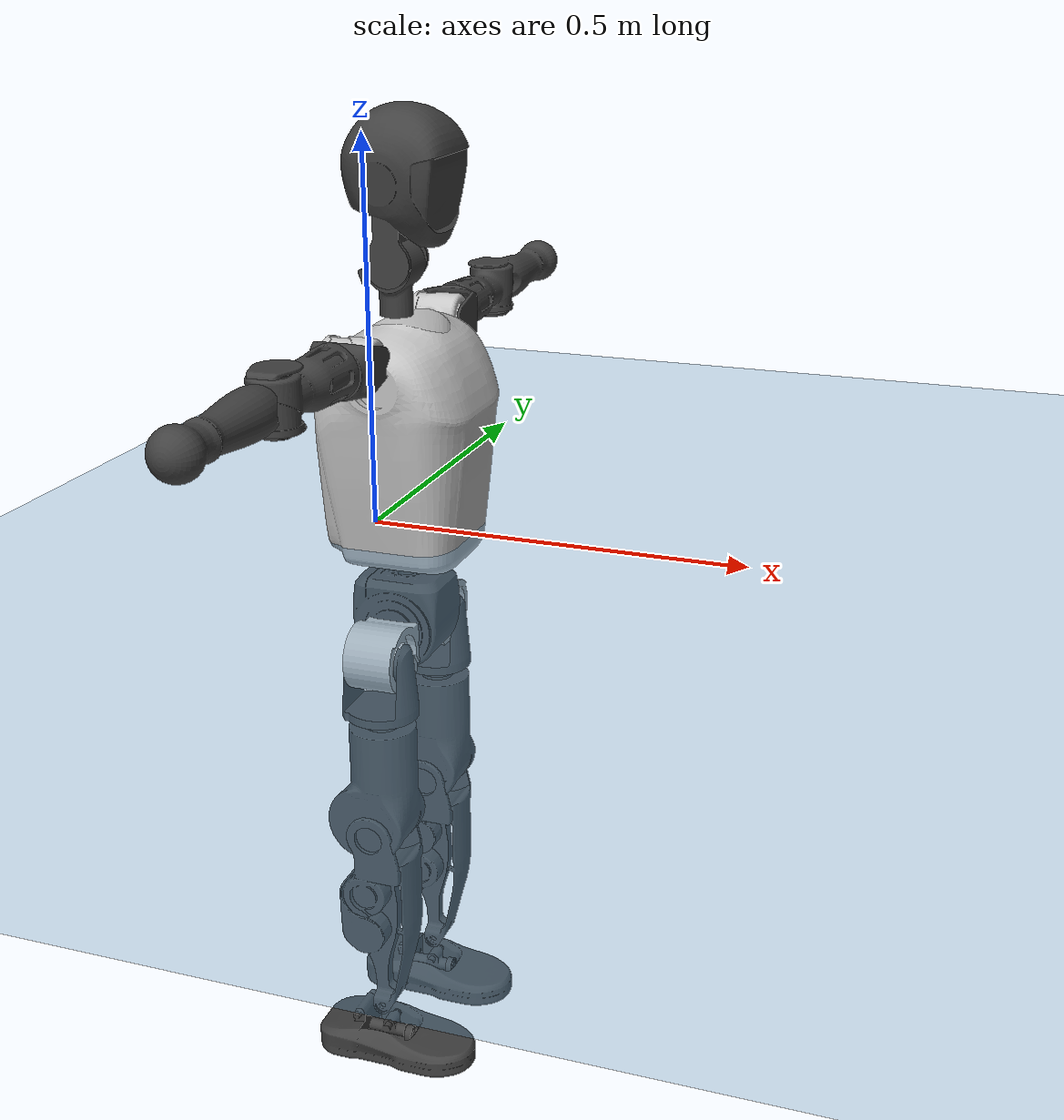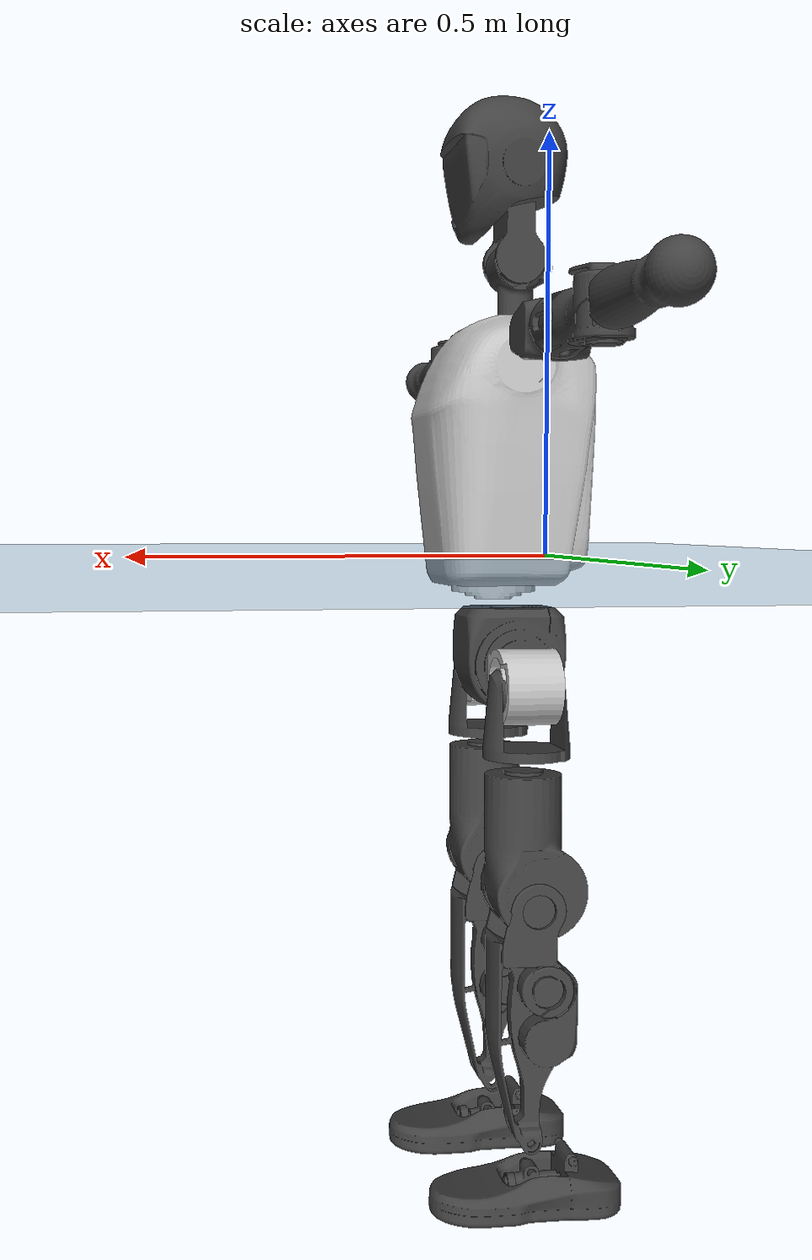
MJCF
<mujoco model="T1">
  <compiler angle="radian" assetdir="assets" balanceinertia="true" inertiafromgeom="false"/>

  <option timestep="0.005" density="1.2" viscosity="2e-05"/>

  <size nkey="1"/>

  <visual>
    <quality shadowsize="8192"/>
    <map shadowclip="0.5"/>
  </visual>

  <default>
    <default class="/">
      <joint armature="0.01" damping="0.01" frictionloss="0.1"/>
      <geom contype="0" conaffinity="0" group="1" solref="-1000 -80"/>
      <site size="0.01 0.005 0.005" group="5"/>
      <general forcelimited="true" biastype="affine" gainprm="25" biasprm="0 -25 -0.6"/>
      <default class="t1">
        <geom rgba="0.25 0.25 0.25 1"/>
        <default class="visual">
          <geom type="mesh" group="2"/>
        </default>
        <default class="collision">
          <geom group="3"/>
        </default>
        <default class="foot">
          <geom size="0.1115 0.05 0.015" type="box" condim="6" group="4" priority="1" solimp="0.015 1 0.015"/>
        </default>
        <default class="reward_collision_sphere">
          <geom group="5" rgba="1 0 0 1"/>
        </default>
      </default>
    </default>
  </default>

  <asset>
    <texture type="skybox" colorspace="auto" name="//unnamed_texture_0" builtin="gradient" rgb1="0.95 0.95 0.95" rgb2="0.95 0.95 0.95" width="100" height="600"/>
    <texture type="2d" colorspace="auto" name="texplane" builtin="checker" rgb1="0.345 0.575 0.748" rgb2="0.345 0.575 0.748" markrgb="1 1 1" width="512" height="512"/>
    <material name="MatPlane" class="/" texture="texplane" texuniform="true" texrepeat="2 2" specular="0.9"/>
    <mesh name="Trunk" class="/" file="Trunk.stl"/>
    <mesh name="H1" class="/" file="H1.stl"/>
    <mesh name="H2" class="/" file="H2.stl"/>
    <mesh name="AL1" class="/" file="AL1.stl"/>
    <mesh name="AL2" class="/" file="AL2.stl"/>
    <mesh name="AL3" class="/" file="AL3.stl"/>
    <mesh name="left_hand_link" class="/" file="left_hand_link.stl"/>
    <mesh name="AR1" class="/" file="AR1.stl"/>
    <mesh name="AR2" class="/" file="AR2.stl"/>
    <mesh name="AR3" class="/" file="AR3.stl"/>
    <mesh name="right_hand_link" class="/" file="right_hand_link.stl"/>
    <mesh name="Waist" class="/" file="Waist.stl"/>
    <mesh name="Hip_Pitch_Left" class="/" file="Hip_Pitch_Left.stl"/>
    <mesh name="Hip_Roll_Left" class="/" file="Hip_Roll_Left.stl"/>
    <mesh name="Hip_Yaw_Left" class="/" file="Hip_Yaw_Left.stl"/>
    <mesh name="Shank_Left" class="/" file="Shank_Left.stl"/>
    <mesh name="Ankle_Cross_Left" class="/" file="Ankle_Cross_Left.stl"/>
    <mesh name="left_foot_link" class="/" file="left_foot_link.stl"/>
    <mesh name="Hip_Pitch_Right" class="/" file="Hip_Pitch_Right.stl"/>
    <mesh name="Hip_Roll_Right" class="/" file="Hip_Roll_Right.stl"/>
    <mesh name="Hip_Yaw_Right" class="/" file="Hip_Yaw_Right.stl"/>
    <mesh name="Shank_Right" class="/" file="Shank_Right.stl"/>
    <mesh name="Ankle_Cross_Right" class="/" file="Ankle_Cross_Right.stl"/>
    <mesh name="right_foot_link" class="/" file="right_foot_link.stl"/>
  </asset>

  <worldbody>
    <geom name="floor" class="/" size="100 100 0.125" type="plane" group="0" material="MatPlane"/>
    <light name="toplight_shadow" class="/" pos="0 0 5" dir="0.0990148 0.0990148 -0.990148" type="directional" ambient="0.04 0.04 0.04" diffuse="0.55 0.55 0.55" specular="0.12 0.12 0.12"/>
    <light name="toplight_fill" class="/" pos="0 0 5" dir="0.0990148 0.0990148 -0.990148" type="directional" castshadow="false" ambient="0.04 0.04 0.04" diffuse="0.3 0.3 0.3" specular="0.08 0.08 0.08"/>
    <body name="trunk" childclass="t1" pos="0.00100583 -0.0028139 0.000748451" quat="1 0.000327974 -6.9918e-05 -8.9048e-05">
      <inertial pos="0.035437 -0.00242227 0.11671" quat="0.999989 0.00100853 -0.00453601 2.84399e-05" mass="8.07986" diaginertia="0.0135434 0.0352611 0.104547"/>
      <joint name="//unnamed_joint_0" type="free" armature="0" damping="0" frictionloss="0"/>
      <geom name="//unnamed_geom_1" class="visual" rgba="0.76 0.76 0.76 1" mesh="Trunk"/>
      <geom name="//unnamed_geom_2" class="collision" size="0.0671436 0.0895248 0.134287" pos="0.041143 0 0.136346" type="box"/>
      <geom name="//unnamed_geom_3" class="reward_collision_sphere" size="0.102953" pos="0.041143 0 0.113622"/>
      <geom name="//unnamed_geom_4" class="reward_collision_sphere" size="0.0134287" pos="0.041143 0.0734234 0"/>
      <geom name="//unnamed_geom_5" class="reward_collision_sphere" size="0.0134287" pos="0.041143 -0.0734234 0"/>
      <geom name="//unnamed_geom_6" class="reward_collision_sphere" size="0.0134287" pos="0.041143 0.0924271 0.20452"/>
      <geom name="//unnamed_geom_7" class="reward_collision_sphere" size="0.0134287" pos="0.041143 -0.0924271 0.20452"/>
      <site name="imu" pos="0.0122496 0.00660489 -0.0122086" size="0.00895248"/>
      <camera name="track" pos="0 -1.72761 0" quat="0.707107 0.707107 0 0" mode="trackcom"/>
      <camera name="ego_camera" pos="0.0836575 0 0.477213" quat="-0.5 -0.5 0.5 0.5"/>
      <body name="H1" pos="0.0387324 0.002417 0.278731" quat="0.999999 0.000369243 0.000765858 0.000907978">
        <inertial pos="-0.00409209 -0.00117323 0.0679826" quat="0.765688 -0.0156274 -0.000231586 0.643022" mass="0.330354" diaginertia="3.80527e-05 0.00011169 0.000277107"/>
        <joint name="AAHead_yaw" pos="0 0 0" axis="-0.0020399 -0.00268249 0.999994" range="-1.60831 1.56219" armature="0.00773824" damping="0.0126386" frictionloss="0.0876575"/>
        <geom name="//unnamed_geom_8" class="visual" mesh="H1"/>
        <body name="H2" pos="0.00167455 0.000434828 0.0681735" quat="1 0.000306877 0.000200332 5.70684e-05">
          <inertial pos="0.00613611 0.00186035 0.112108" quat="0.98826 0.108154 -0.073309 -0.0791886" mass="0.459837" diaginertia="0.00031711 0.000958373 0.00331106"/>
          <joint name="Head_pitch" pos="0 0 0" axis="-0.010642 -0.999911 -0.00806649" range="-1.20699 0.354605" armature="0.00868051" damping="0.00770702" frictionloss="0.0863635"/>
          <geom name="//unnamed_geom_9" class="visual" mesh="H2"/>
          <geom name="//unnamed_geom_10" class="collision" size="0.0716198" pos="0.00685717 0 0.124984"/>
          <geom name="//unnamed_geom_11" class="reward_collision_sphere" size="0.0805723" pos="0.0137143 0 0.113622"/>
        </body>
      </body>
      <body name="AL1" pos="0.0379506 0.0954117 0.248768" quat="1 8.21757e-07 0.000415936 1.87699e-05">
        <inertial pos="-0.00114708 0.0379807 -0.00222154" quat="0.506232 0.494229 -0.50348 0.495959" mass="0.380318" diaginertia="0.000205112 0.000617121 0.000535772"/>
        <joint name="Left_Shoulder_Pitch" pos="0 0 0" axis="5.38015e-05 0.999998 -0.00218082" stiffness="0.0113468" range="-3.33071 1.16563" armature="0.00859737" damping="0.00863681" frictionloss="0.0890125"/>
        <geom name="//unnamed_geom_12" class="visual" rgba="0.76 0.76 0.76 1" mesh="AL1"/>
        <body name="AL2" pos="0.00224629 0.0426187 -0.00246257" quat="1 -1.74862e-06 4.82866e-05 1.57977e-05">
          <inertial pos="0.00523346 0.0300274 -0.00177176" quat="0.491733 0.504449 -0.485639 0.517577" mass="0.116389" diaginertia="6.16897e-05 0.000167235 0.00033894"/>
          <joint name="Left_Shoulder_Roll" pos="0 0 0" axis="-0.999912 0.00722902 -0.0111089" range="-1.55464 1.74227" armature="0.00914651" damping="0.0126547" frictionloss="0.0898709"/>
          <geom name="//unnamed_geom_13" class="visual" mesh="AL2"/>
          <body name="AL3" pos="0.000638991 0.0517632 0.00282625" quat="1 -7.94015e-05 0.000144861 0.000465798">
            <inertial pos="-0.00332766 0.0738841 -0.00052669" quat="0.705723 0.708487 0.000978052 -0.000875109" mass="0.722415" diaginertia="0.00200173 0.00613335 0.00117503"/>
            <joint name="Left_Elbow_Pitch" pos="0 0 0" axis="-0.00172649 -0.999995 -0.00250279" range="-2.31775 2.25771" armature="0.0089599" damping="0.00552701" frictionloss="0.0899529"/>
            <geom name="//unnamed_geom_14" class="visual" mesh="AL3"/>
            <geom name="//unnamed_geom_15" class="collision" size="0.0268574 0.0671436" pos="0 0.0431903 0" quat="0.707105 0.707108 0 0" type="cylinder"/>
            <geom name="//unnamed_geom_16" class="reward_collision_sphere" size="0.0322289"/>
            <body name="left_hand_link" pos="0.00141334 0.129869 0.00290355" quat="1 0.000128925 -0.000253734 0.000100834">
              <inertial pos="0.000979371 0.0921563 -0.00100264" quat="0.71526 0.698848 0.00246337 0.00301098" mass="0.235179" diaginertia="0.0012464 0.00387514 0.000418919"/>
              <joint name="Left_Elbow_Yaw" pos="0 0 0" axis="-0.00600799 0.0010647 0.999981" range="-2.46165 -0.0288167" armature="0.0102736" damping="0.0244565" frictionloss="0.0888138"/>
              <geom name="//unnamed_geom_17" class="visual" mesh="left_hand_link"/>
              <geom name="//unnamed_geom_18" class="collision" size="0.0268574 0.0783342" pos="0 0.112295 0" quat="0.707105 0.707108 0 0" type="cylinder"/>
              <geom name="//unnamed_geom_19" class="reward_collision_sphere" size="0.0447624"/>
              <geom name="//unnamed_geom_20" class="reward_collision_sphere" size="0.0313337" pos="0 0.0950186 0"/>
              <geom name="//unnamed_geom_21" class="reward_collision_sphere" size="0.0313337" pos="0 0.185718 0"/>
            </body>
          </body>
        </body>
      </body>
      <body name="AR1" pos="0.040394 -0.0872971 0.25001" quat="1 -0.000166646 0.000169495 0.000212868">
        <inertial pos="-0.00165527 -0.0418769 0.00276352" quat="0.504282 0.493807 -0.503382 0.498458" mass="0.383664" diaginertia="0.000202726 0.000631771 0.000550862"/>
        <joint name="Right_Shoulder_Pitch" pos="0 0 0" axis="-0.00973352 -0.99995 -0.00211729" range="-1.17228 3.31203" armature="0.00791292" damping="0.0205673" frictionloss="0.0772152"/>
        <geom name="//unnamed_geom_22" class="visual" rgba="0.76 0.76 0.76 1" mesh="AR1"/>
        <body name="AR2" pos="0.000679676 -0.0407234 -0.000657505" quat="1 0.000557105 -0.000734781 0.000225237">
          <inertial pos="-0.000151232 -0.0305918 -0.000698909" quat="0.518414 0.488866 -0.501855 0.490304" mass="0.111389" diaginertia="5.90392e-05 0.000166679 0.000323978"/>
          <joint name="Right_Shoulder_Roll" pos="0 0 0" axis="-0.999998 0.00128704 0.0017466" range="-1.79385 1.51671" armature="0.00885352" damping="0" frictionloss="0.0897661"/>
          <geom name="//unnamed_geom_23" class="visual" mesh="AR2"/>
          <body name="AR3" pos="-0.00329822 -0.0530241 0.00121243" quat="1 0.000435605 -0.000344601 -0.0003261">
            <inertial pos="-0.000911008 -0.0748062 0.00303951" quat="0.709158 0.705041 -0.00151271 -0.00323199" mass="0.72641" diaginertia="0.00195482 0.00588469 0.00112567"/>
            <joint name="Right_Elbow_Pitch" pos="0 0 0" axis="0.0102598 0.999906 0.00907056" range="-2.32071 2.28918" armature="0.00849882" damping="0.0149038" frictionloss="0.102106"/>
            <geom name="//unnamed_geom_24" class="visual" mesh="AR3"/>
            <geom name="//unnamed_geom_25" class="collision" size="0.0268574 0.0671436" pos="0 -0.0431903 0" quat="0.707105 0.707108 0 0" type="cylinder"/>
            <geom name="//unnamed_geom_26" class="reward_collision_sphere" size="0.0322289"/>
            <body name="right_hand_link" pos="-0.00389897 -0.129646 0.00091538" quat="1 0.000545309 -0.000649102 -0.000332034">
              <inertial pos="-0.000254973 -0.0920821 -0.000404332" quat="0.706238 0.707974 0.000391633 9.72463e-05" mass="0.241834" diaginertia="0.00125609 0.00380109 0.00041235"/>
              <joint name="Right_Elbow_Yaw" pos="0 0 0" axis="-0.00310308 0.00253561 0.999992" range="-0.013898 2.41182" armature="0.00795949" damping="0.0144316" frictionloss="0.0918046"/>
              <geom name="//unnamed_geom_27" class="visual" mesh="right_hand_link"/>
              <geom name="//unnamed_geom_28" class="collision" size="0.0268574 0.0783342" pos="0 -0.112295 0" quat="0.707105 0.707108 0 0" type="cylinder"/>
              <geom name="//unnamed_geom_29" class="reward_collision_sphere" size="0.0447624"/>
              <geom name="//unnamed_geom_30" class="reward_collision_sphere" size="0.0313337" pos="0 -0.0950186 0"/>
              <geom name="//unnamed_geom_31" class="reward_collision_sphere" size="0.0313337" pos="0 -0.185718 0"/>
            </body>
          </body>
        </body>
      </body>
      <body name="Waist" pos="0.0425727 -0.000791383 -0.128097" quat="1 0.000495941 -8.54099e-05 0.000464131">
        <inertial pos="0.00394567 0.00154571 0.00825529" quat="0.985629 0.00128112 -0.168874 0.00388804" mass="1.75165" diaginertia="0.000766707 0.00237664 0.00844919"/>
        <joint name="Waist" pos="0 0 0" axis="-0.0117094 -0.00239673 0.999929" range="-1.62554 1.51715" armature="0.00855234" damping="0.0096509" frictionloss="0.101888"/>
        <geom name="//unnamed_geom_32" class="visual" mesh="Waist"/>
        <body name="Hip_Pitch_Left" pos="0.00371993 0.088798 -0.00105777" quat="1 -0.000350191 4.47022e-05 -0.000922422">
          <inertial pos="-0.00170968 -0.00694037 -0.0217452" quat="0.974068 0.225573 0.0149273 -0.00928237" mass="0.70123" diaginertia="0.000263656 0.000677206 0.00229886"/>
          <joint name="Left_Hip_Pitch" pos="0 0 0" axis="0.00444782 0.999858 -0.0162454" stiffness="0.0192893" range="-1.7859 1.5993" armature="0.00816087" damping="0" frictionloss="0.0859232"/>
          <geom name="//unnamed_geom_33" class="visual" rgba="0.76 0.76 0.76 1" mesh="Hip_Pitch_Left"/>
          <body name="Hip_Roll_Left" pos="0.000712142 -0.000162643 -0.0252256" quat="1 0.000163869 0.000485715 0.000136551">
            <inertial pos="0.00024118 0.00114821 -0.0626503" quat="0.707288 -0.0062252 -0.00618094 0.706871" mass="0.2808" diaginertia="0.000273728 0.000730929 0.000986695"/>
            <joint name="Left_Hip_Roll" pos="0 0 0" axis="-0.999871 -0.000440384 0.0160283" range="-1.62155 0.215007" armature="0.00907222" damping="0.0208636" frictionloss="0.0882841"/>
            <geom name="//unnamed_geom_34" class="visual" mesh="Hip_Roll_Left"/>
            <geom name="//unnamed_geom_35" class="reward_collision_sphere" size="0.0492386"/>
            <body name="Hip_Yaw_Left" pos="0.00102096 0.000372069 -0.0950881" quat="1 3.21975e-05 0.000171117 0.000175811">
              <inertial pos="-0.00731271 -0.000695242 -0.0991843" quat="0.697769 -0.034113 -0.0244109 0.715094" mass="1.56954" diaginertia="0.00415336 0.0125657 0.00526027"/>
              <joint name="Left_Hip_Yaw" pos="0 0 0" axis="-0.00278397 0.00100848 -0.999996" stiffness="0.0037407" range="-1.02218 0.990541" armature="0.0103109" damping="0.0161743" frictionloss="0.0906183"/>
              <geom name="//unnamed_geom_36" class="visual" mesh="Hip_Yaw_Left"/>
              <geom name="//unnamed_geom_37" class="collision" size="0.0447624 0.0716198" type="cylinder"/>
              <body name="Shank_Left" pos="-0.00919503 -0.00195198 -0.153069" quat="0.999999 0.000374267 -0.00118407 -0.000238745">
                <inertial pos="-0.00511627 0.000767629 -0.142892" quat="0.997419 -0.00282206 -0.0267541 0.0665757" mass="1.21518" diaginertia="0.00517881 0.0156633 0.0032937"/>
                <joint name="Left_Knee_Pitch" pos="0 0 0" axis="-0.000263086 0.999999 0.00119293" range="0.05584 2.3561" armature="0.00859366" damping="0" frictionloss="0.080549"/>
                <geom name="//unnamed_geom_38" class="visual" mesh="Shank_Left"/>
                <geom name="//unnamed_geom_39" class="collision" size="0.0447624 0.0671436" pos="0 0 -0.136346" type="cylinder"/>
                <geom name="//unnamed_geom_40" class="reward_collision_sphere" size="0.0581911"/>
                <body name="Ankle_Cross_Left" pos="-0.00379396 -0.00283622 -0.320055" quat="1 0.000646448 -0.000402285 0.000416854">
                  <inertial pos="-0.00311329 0.000717468 -0.00868444" quat="0.442832 0.550281 0.551635 0.443609" mass="0.051105" diaginertia="4.5668e-06 1.23363e-05 2.13085e-05"/>
                  <joint name="Left_Ankle_Pitch" pos="0 0 0" axis="0.00816533 0.999964 0.00222253" stiffness="0.0126619" range="-0.92342 0.37627" armature="0.00838744" damping="0.0220987" frictionloss="0.101936"/>
                  <geom name="//unnamed_geom_41" class="visual" mesh="Ankle_Cross_Left"/>
                  <body name="left_foot_link" pos="-0.00268158 0.00251563 -0.013558" quat="1 7.36197e-06 6.48514e-06 5.38739e-06">
                    <inertial pos="-0.000840699 -0.000718623 -0.0128033" quat="-0.00735775 0.63005 -0.000190201 0.77652" mass="0.480222" diaginertia="0.000427845 0.00117894 0.00428404"/>
                    <joint name="Left_Ankle_Roll" pos="0 0 0" axis="-1 -0.000382481 -0.000242763" range="-0.462069 0.428744" armature="0.0103389" damping="0.0134599" frictionloss="0.0858868"/>
                    <geom name="//unnamed_geom_42" class="visual" mesh="left_foot_link"/>
                    <geom name="left_foot" class="foot" size="0.105383 0.0403246 0.0135416" pos="0.00685717 0 -0.0170433"/>
                    <geom name="//unnamed_geom_44" class="reward_collision_sphere" size="0.0465529" pos="0.00685717 0 -0.0170433"/>
                    <geom name="//unnamed_geom_45" class="reward_collision_sphere" size="0.0268574" pos="0.0651432 -0.0198675 -0.0170433"/>
                    <geom name="//unnamed_geom_46" class="reward_collision_sphere" size="0.0268574" pos="-0.0480002 -0.0198675 -0.0170433"/>
                    <site name="left_foot" class="foot" pos="0.00685717 0 -0.0170433" size="0.00895248"/>
                  </body>
                </body>
              </body>
            </body>
          </body>
        </body>
        <body name="Hip_Pitch_Right" pos="0.00240514 -0.0938097 0.000638969" quat="1 0.000311712 -0.000250916 -0.000364718">
          <inertial pos="0.00273166 0.0043669 -0.0175504" quat="0.973671 -0.227409 0.0152758 -0.00408686" mass="0.735168" diaginertia="0.000271101 0.000737413 0.00239097"/>
          <joint name="Right_Hip_Pitch" pos="0 0 0" axis="0.00311031 -0.999993 -0.00208498" range="-1.61903 1.79433" armature="0.0101915" damping="0.00971285" frictionloss="0.0774844"/>
          <geom name="//unnamed_geom_47" class="visual" rgba="0.76 0.76 0.76 1" mesh="Hip_Pitch_Right"/>
          <body name="Hip_Roll_Right" pos="0.000266124 -0.00111737 -0.0237669" quat="1 0.000108843 0.000142085 6.15198e-05">
            <inertial pos="0.00311728 0.00225833 -0.0585499" quat="0.704492 -0.00273553 -0.0065073 0.709677" mass="0.288143" diaginertia="0.000273152 0.000774557 0.00101526"/>
            <joint name="Right_Hip_Roll" pos="0 0 0" axis="-0.999843 -0.000355441 0.0177122" range="-0.201189 1.57418" armature="0.00917207" damping="0.00596892" frictionloss="0.0880932"/>
            <geom name="//unnamed_geom_48" class="visual" mesh="Hip_Roll_Right"/>
            <geom name="//unnamed_geom_49" class="reward_collision_sphere" size="0.0492386"/>
            <body name="Hip_Yaw_Right" pos="0.000699064 -0.00345885 -0.0914635" quat="1 -0.000505431 -0.000543764 0.000556524">
              <inertial pos="-0.00489991 -0.00311518 -0.0989878" quat="0.714971 -0.033249 -0.0360033 0.697435" mass="1.61108" diaginertia="0.00391616 0.0126256 0.00491727"/>
              <joint name="Right_Hip_Yaw" pos="0 0 0" axis="-5.34159e-05 -0.00333689 -0.999994" stiffness="0.00859614" range="-0.9806 1.02891" armature="0.00793238" damping="0.00721668" frictionloss="0.0866849"/>
              <geom name="//unnamed_geom_50" class="visual" mesh="Hip_Yaw_Right"/>
              <geom name="//unnamed_geom_51" class="collision" size="0.0447624 0.0716198" type="cylinder"/>
              <body name="Shank_Right" pos="-0.00904208 0.00137256 -0.154244" quat="0.999999 0.00138526 0.00038125 2.65101e-05">
                <inertial pos="-0.00157176 -0.00120131 -0.138499" quat="0.999194 0.000486706 -0.023291 -0.0326931" mass="1.19968" diaginertia="0.00528375 0.0162819 0.00372257"/>
                <joint name="Right_Knee_Pitch" pos="0 0 0" axis="0.00103716 -0.999999 -0.000977503" stiffness="0.00208058" range="-2.3457 0.0492978" armature="0.00903278" damping="0.0113346" frictionloss="0.0936875"/>
                <geom name="//unnamed_geom_52" class="visual" mesh="Shank_Right"/>
                <geom name="//unnamed_geom_53" class="collision" size="0.0447624 0.0671436" pos="0 0 -0.136346" type="cylinder"/>
                <geom name="//unnamed_geom_54" class="reward_collision_sphere" size="0.0581911"/>
                <body name="Ankle_Cross_Right" pos="0.00472135 0.000918827 -0.317863" quat="1 8.75128e-06 -0.000669361 6.68174e-05">
                  <inertial pos="-0.00204869 0.0020923 -0.00786904" quat="0.442724 0.551121 0.551271 0.443127" mass="0.052672" diaginertia="4.44824e-06 1.22821e-05 2.09156e-05"/>
                  <joint name="Right_Ankle_Pitch" pos="0 0 0" axis="0.00245795 -0.999935 -0.0111376" stiffness="0.0109746" range="-0.334212 0.890899" armature="0.00849422" damping="0.0131833" frictionloss="0.0880641"/>
                  <geom name="//unnamed_geom_55" class="visual" mesh="Ankle_Cross_Right"/>
                  <body name="right_foot_link" pos="0.00270183 -0.00320411 -0.0116877" quat="1 0.000198742 0.00023952 0.000427034">
                    <inertial pos="0.000131839 0.00186437 -0.00985577" quat="0.000780429 0.609695 0.00013959 0.792636" mass="0.496732" diaginertia="0.000409678 0.00117852 0.00435472"/>
                    <joint name="Right_Ankle_Roll" pos="0 0 0" axis="-0.999975 0.00703913 0.00039455" range="-0.453551 0.383608" armature="0.00870216" damping="0.0122846" frictionloss="0.0893369"/>
                    <geom name="//unnamed_geom_56" class="visual" mesh="right_foot_link"/>
                    <geom name="right_foot" class="foot" size="0.0963065 0.049232 0.0134715" pos="0.00685717 0 -0.0170433"/>
                    <geom name="//unnamed_geom_58" class="reward_collision_sphere" size="0.0358099"/>
                    <geom name="//unnamed_geom_59" class="reward_collision_sphere" size="0.0268574" pos="0.00685717 0 -0.0170433"/>
                    <geom name="//unnamed_geom_60" class="reward_collision_sphere" size="0.0268574" pos="0.0651432 0.0198675 -0.0170433"/>
                    <geom name="//unnamed_geom_61" class="reward_collision_sphere" size="0.0268574" pos="-0.0480002 0.0198675 -0.0170433"/>
                    <site name="right_foot" class="foot" pos="0.00685717 0 -0.0170433" size="0.00895248"/>
                  </body>
                </body>
              </body>
            </body>
          </body>
        </body>
      </body>
    </body>
  </worldbody>

  <contact>
    <pair class="/" geom1="floor" geom2="left_foot" name="//unnamed_contact_0"/>
    <pair class="/" geom1="floor" geom2="right_foot" name="//unnamed_contact_1"/>
  </contact>

  <actuator>
    <general name="AAHead_yaw" class="/" joint="AAHead_yaw" forcerange="-5.77576 5.77576" gainprm="22.4131" biasprm="0 -22.4131 -0.569135"/>
    <general name="Head_pitch" class="/" joint="Head_pitch" forcerange="-6.77325 6.77325" gainprm="22.4131" biasprm="0 -22.4131 -0.569135"/>
    <general name="Left_Shoulder_Pitch" class="/" joint="Left_Shoulder_Pitch" forcerange="-16.5797 16.5797" gainprm="22.4131" biasprm="0 -22.4131 -0.569135"/>
    <general name="Left_Shoulder_Roll" class="/" joint="Left_Shoulder_Roll" forcerange="-16.0838 16.0838" gainprm="22.4131" biasprm="0 -22.4131 -0.569135"/>
    <general name="Left_Elbow_Pitch" class="/" joint="Left_Elbow_Pitch" forcerange="-14.4875 14.4875" gainprm="22.4131" biasprm="0 -22.4131 -0.569135"/>
    <general name="Left_Elbow_Yaw" class="/" joint="Left_Elbow_Yaw" forcerange="-16.5346 16.5346" gainprm="22.4131" biasprm="0 -22.4131 -0.569135"/>
    <general name="Right_Shoulder_Pitch" class="/" joint="Right_Shoulder_Pitch" forcerange="-15.6813 15.6813" gainprm="22.4131" biasprm="0 -22.4131 -0.569135"/>
    <general name="Right_Shoulder_Roll" class="/" joint="Right_Shoulder_Roll" forcerange="-15.542 15.542" gainprm="22.4131" biasprm="0 -22.4131 -0.569135"/>
    <general name="Right_Elbow_Pitch" class="/" joint="Right_Elbow_Pitch" forcerange="-14.4602 14.4602" gainprm="22.4131" biasprm="0 -22.4131 -0.569135"/>
    <general name="Right_Elbow_Yaw" class="/" joint="Right_Elbow_Yaw" forcerange="-14.3974 14.3974" gainprm="22.4131" biasprm="0 -22.4131 -0.569135"/>
    <general name="Waist" class="/" joint="Waist" forcerange="-24.1824 24.1824" gainprm="22.4131" biasprm="0 -22.4131 -0.569135"/>
    <general name="Left_Hip_Pitch" class="/" joint="Left_Hip_Pitch" forcerange="-41.3745 41.3745" gainprm="22.4131" biasprm="0 -22.4131 -0.569135"/>
    <general name="Left_Hip_Roll" class="/" joint="Left_Hip_Roll" forcerange="-24.0441 24.0441" gainprm="22.4131" biasprm="0 -22.4131 -0.569135"/>
    <general name="Left_Hip_Yaw" class="/" joint="Left_Hip_Yaw" forcerange="-24.0734 24.0734" gainprm="22.4131" biasprm="0 -22.4131 -0.569135"/>
    <general name="Left_Knee_Pitch" class="/" joint="Left_Knee_Pitch" forcerange="-58.5043 58.5043" gainprm="22.4131" biasprm="0 -22.4131 -0.569135"/>
    <general name="Left_Ankle_Pitch" class="/" joint="Left_Ankle_Pitch" forcerange="-18.1153 18.1153" gainprm="22.4131" biasprm="0 -22.4131 -0.569135"/>
    <general name="Left_Ankle_Roll" class="/" joint="Left_Ankle_Roll" forcerange="-12.8649 12.8649" gainprm="22.4131" biasprm="0 -22.4131 -0.569135"/>
    <general name="Right_Hip_Pitch" class="/" joint="Right_Hip_Pitch" forcerange="-38.6891 38.6891" gainprm="22.4131" biasprm="0 -22.4131 -0.569135"/>
    <general name="Right_Hip_Roll" class="/" joint="Right_Hip_Roll" forcerange="-27.9152 27.9152" gainprm="22.4131" biasprm="0 -22.4131 -0.569135"/>
    <general name="Right_Hip_Yaw" class="/" joint="Right_Hip_Yaw" forcerange="-24.6893 24.6893" gainprm="22.4131" biasprm="0 -22.4131 -0.569135"/>
    <general name="Right_Knee_Pitch" class="/" joint="Right_Knee_Pitch" forcerange="-48.5049 48.5049" gainprm="22.4131" biasprm="0 -22.4131 -0.569135"/>
    <general name="Right_Ankle_Pitch" class="/" joint="Right_Ankle_Pitch" forcerange="-18.637 18.637" gainprm="22.4131" biasprm="0 -22.4131 -0.569135"/>
    <general name="Right_Ankle_Roll" class="/" joint="Right_Ankle_Roll" forcerange="-14.2723 14.2723" gainprm="22.4131" biasprm="0 -22.4131 -0.569135"/>
  </actuator>

  <sensor>
    <gyro site="imu" name="imu_angular_velocity"/>
    <velocimeter site="imu" name="imu_linear_velocity"/>
    <framelinvel objtype="site" objname="left_foot" name="left_foot_global_linear_velocity"/>
    <framelinvel objtype="site" objname="right_foot" name="right_foot_global_linear_velocity"/>
  </sensor>

  <keyframe>
    <key name="home" qpos="0 0 0.6385 1 0 0 0 0 0 0 1.4 0 -0.4 0 -1.4 0 0.4 0 -0.4 0 0 0.8 -0.4 0 0.4 0 0 -0.8 0.4 0"/>
  </keyframe>
</mujoco>
